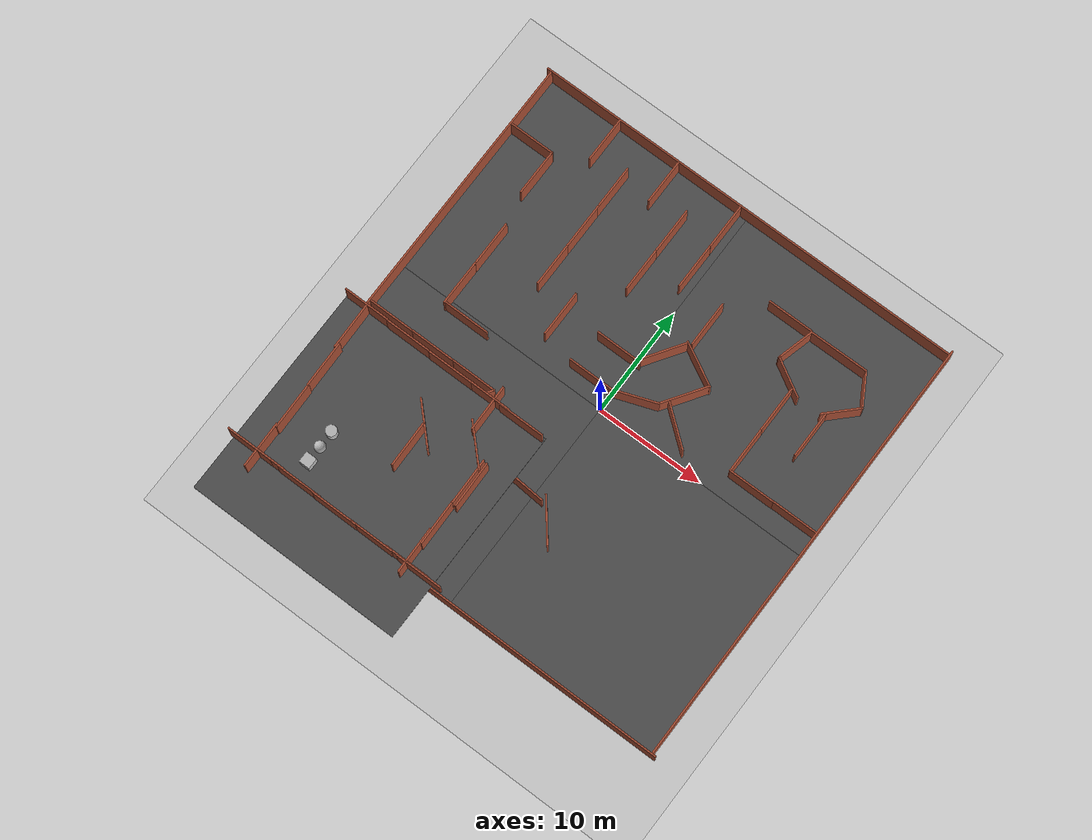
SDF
<sdf version="1.6">
 <world name="default">
  <light name="sun" type="directional">
   <pose>0 0 10 0 -0 0</pose>
   <diffuse>0.8 0.8 0.8 1</diffuse>
   <specular>0.2 0.2 0.2 1</specular>
   <attenuation>
    <range>1000</range>
    <constant>0.9</constant>
    <linear>0.01</linear>
    <quadratic>0.001</quadratic>
   </attenuation>
   <direction>-0.5 0.1 -0.9</direction>
  </light>
  <model name="ground_plane">
   <static>1</static>
   <link name="link">
    <collision name="collision">
     <geometry><plane><normal>0 0 1</normal><size>100 100</size></plane></geometry>
     <surface><friction><ode><mu>100</mu><mu2>50</mu2></ode></friction></surface>
    </collision>
    <visual name="visual">
     <cast_shadows>0</cast_shadows>
     <geometry><plane><normal>0 0 1</normal><size>100 100</size></plane></geometry>
     <material>
      <script><uri>file://media/materials/scripts/gazebo.material</uri><name>Gazebo/Grey</name></script>
     </material>
    </visual>
   </link>
  </model>
  <physics name="default_physics" default="0" type="ode">
   <max_step_size>0.001</max_step_size>
   <real_time_factor>1</real_time_factor>
   <real_time_update_rate>1000</real_time_update_rate>
  </physics>
  <scene><ambient>0.4 0.4 0.4 1</ambient><background>0.7 0.7 0.7 1</background><shadows>1</shadows></scene>
  <spherical_coordinates>
   <surface_model>EARTH_WGS84</surface_model>
   <latitude_deg>0</latitude_deg>
   <longitude_deg>0</longitude_deg>
   <elevation>0</elevation>
   <heading_deg>0</heading_deg>
  </spherical_coordinates>
  <model name="asphalt_plane">
   <static>1</static>
   <link name="link">
    <collision name="collision"><geometry><box><size>20 20 0.1</size></box></geometry></collision>
    <visual name="visual">
     <cast_shadows>0</cast_shadows>
     <geometry><box><size>20 20 0.1</size></box></geometry>
     <material>
      <script>
       <uri>model://asphalt_plane/materials/scripts</uri>
       <uri>model://asphalt_plane/materials/textures</uri>
       <name>vrc/asphalt</name>
      </script>
     </material>
    </visual>
   </link>
   <pose>10 10 0 0 -0 0</pose>
  </model>
  <model name="asphalt_plane_0">
   <static>1</static>
   <link name="link">
    <collision name="collision"><geometry><box><size>20 20 0.1</size></box></geometry></collision>
    <visual name="visual">
     <cast_shadows>0</cast_shadows>
     <geometry><box><size>20 20 0.1</size></box></geometry>
     <material>
      <script>
       <uri>model://asphalt_plane/materials/scripts</uri>
       <uri>model://asphalt_plane/materials/textures</uri>
       <name>vrc/asphalt</name>
      </script>
     </material>
    </visual>
   </link>
   <pose>-10 10 0 0 -0 0</pose>
  </model>
  <model name="asphalt_plane_1">
   <static>1</static>
   <link name="link">
    <collision name="collision"><geometry><box><size>20 20 0.1</size></box></geometry></collision>
    <visual name="visual">
     <cast_shadows>0</cast_shadows>
     <geometry><box><size>20 20 0.1</size></box></geometry>
     <material>
      <script>
       <uri>model://asphalt_plane/materials/scripts</uri>
       <uri>model://asphalt_plane/materials/textures</uri>
       <name>vrc/asphalt</name>
      </script>
     </material>
    </visual>
   </link>
   <pose>-10 -10 0 0 -0 0</pose>
  </model>
  <model name="asphalt_plane_2">
   <static>1</static>
   <link name="link">
    <collision name="collision"><geometry><box><size>20 20 0.1</size></box></geometry></collision>
    <visual name="visual">
     <cast_shadows>0</cast_shadows>
     <geometry><box><size>20 20 0.1</size></box></geometry>
     <material>
      <script>
       <uri>model://asphalt_plane/materials/scripts</uri>
       <uri>model://asphalt_plane/materials/textures</uri>
       <name>vrc/asphalt</name>
      </script>
     </material>
    </visual>
   </link>
   <pose>10 -10 0 0 -0 0</pose>
  </model>
  <model name="longwall">
   <pose>0.229981 -20.0786 0 0 -0 0</pose>
   <link name="Wall_0">
    <collision name="Wall_0_Collision">
     <geometry><box><size>40.5 0.15 2.5</size></box></geometry>
     <pose>0 0 1.25 0 -0 0</pose>
    </collision>
    <visual name="Wall_0_Visual">
     <pose>0 0 1.25 0 -0 0</pose>
     <geometry><box><size>40.5 0.15 2.5</size></box></geometry>
     <material>
      <script><uri>file://media/materials/scripts/gazebo.material</uri><name>Gazebo/Bricks</name></script>
      <ambient>1 1 1 1</ambient>
     </material>
    </visual>
    <pose>1e-06 0 0 0 -0 0</pose>
   </link>
   <static>1</static>
  </model>
  <model name="longwall_0">
   <pose>-20.0177 -0.255752 0 0 0 -1.57092</pose>
   <link name="Wall_0">
    <collision name="Wall_0_Collision">
     <geometry><box><size>40.5 0.15 2.5</size></box></geometry>
     <pose>0 0 1.25 0 -0 0</pose>
    </collision>
    <visual name="Wall_0_Visual">
     <pose>0 0 1.25 0 -0 0</pose>
     <geometry><box><size>40.5 0.15 2.5</size></box></geometry>
     <material>
      <script><uri>file://media/materials/scripts/gazebo.material</uri><name>Gazebo/Bricks</name></script>
      <ambient>1 1 1 1</ambient>
     </material>
    </visual>
    <pose>1e-06 0 0 0 -0 0</pose>
   </link>
   <static>1</static>
  </model>
  <model name="longwall_0_clone">
   <pose>20.1053 0.258056 0 0 0 -1.57092</pose>
   <link name="Wall_0">
    <collision name="Wall_0_Collision">
     <geometry><box><size>40.5 0.15 2.5</size></box></geometry>
     <pose>0 0 1.25 0 -0 0</pose>
    </collision>
    <visual name="Wall_0_Visual">
     <pose>0 0 1.25 0 -0 0</pose>
     <geometry><box><size>40.5 0.15 2.5</size></box></geometry>
     <material>
      <script><uri>file://media/materials/scripts/gazebo.material</uri><name>Gazebo/Bricks</name></script>
      <ambient>1 1 1 1</ambient>
     </material>
    </visual>
    <pose>1e-06 0 0 0 -0 0</pose>
   </link>
   <static>1</static>
  </model>
  <model name="longwall_clone">
   <pose>-0.214439 20.0862 0 0 -0 0</pose>
   <link name="Wall_0">
    <collision name="Wall_0_Collision">
     <geometry><box><size>40.5 0.15 2.5</size></box></geometry>
     <pose>0 0 1.25 0 -0 0</pose>
    </collision>
    <visual name="Wall_0_Visual">
     <pose>0 0 1.25 0 -0 0</pose>
     <geometry><box><size>40.5 0.15 2.5</size></box></geometry>
     <material>
      <script><uri>file://media/materials/scripts/gazebo.material</uri><name>Gazebo/Bricks</name></script>
      <ambient>1 1 1 1</ambient>
     </material>
    </visual>
    <pose>1e-06 0 0 0 -0 0</pose>
   </link>
   <static>1</static>
  </model>
  <model name="room1">
   <pose>13.1523 12.4323 0 0 -0 0</pose>
   <link name="Wall_11">
    <collision name="Wall_11_Collision">
     <geometry><box><size>3.25 0.15 2.5</size></box></geometry>
     <pose>0 0 1.25 0 -0 0</pose>
    </collision>
    <visual name="Wall_11_Visual">
     <pose>0 0 1.25 0 -0 0</pose>
     <geometry><box><size>3.25 0.15 2.5</size></box></geometry>
     <material>
      <script><uri>file://media/materials/scripts/gazebo.material</uri><name>Gazebo/Bricks</name></script>
      <ambient>1 1 1 1</ambient>
     </material>
    </visual>
    <pose>3.12132 1.19483 0 0 0 -1.0472</pose>
   </link>
   <link name="Wall_12">
    <collision name="Wall_12_Collision">
     <geometry><box><size>3.5 0.15 2.5</size></box></geometry>
     <pose>0 0 1.25 0 -0 0</pose>
    </collision>
    <visual name="Wall_12_Visual">
     <pose>0 0 1.25 0 -0 0</pose>
     <geometry><box><size>3.5 0.15 2.5</size></box></geometry>
     <material>
      <script><uri>file://media/materials/scripts/gazebo.material</uri><name>Gazebo/Bricks</name></script>
      <ambient>1 1 1 1</ambient>
     </material>
    </visual>
    <pose>2.71192 -1.33192 0 0 0 -2.35619</pose>
   </link>
   <link name="Wall_7">
    <collision name="Wall_7_Collision">
     <geometry><box><size>5.52935 0.15 2.5</size></box></geometry>
     <pose>0 0 1.25 0 -0 0</pose>
    </collision>
    <visual name="Wall_7_Visual">
     <pose>0 0 1.25 0 -0 0</pose>
     <geometry><box><size>5.52935 0.15 2.5</size></box></geometry>
     <material>
      <script><uri>file://media/materials/scripts/gazebo.material</uri><name>Gazebo/Bricks</name></script>
      <ambient>1 1 1 1</ambient>
     </material>
    </visual>
    <pose>-0.343285 2.51793 0 0 0 -3.13444</pose>
   </link>
   <link name="Wall_8">
    <collision name="Wall_8_Collision">
     <geometry><box><size>3.5 0.15 2.5</size></box></geometry>
     <pose>0 0 1.25 0 -0 0</pose>
    </collision>
    <visual name="Wall_8_Visual">
     <pose>0 0 1.25 0 -0 0</pose>
     <geometry><box><size>3.5 0.15 2.5</size></box></geometry>
     <material>
      <script><uri>file://media/materials/scripts/gazebo.material</uri><name>Gazebo/Bricks</name></script>
      <ambient>1 1 1 1</ambient>
     </material>
    </visual>
    <pose>-3.46641 0.880761 0 0 0 -1.8326</pose>
   </link>
   <link name="Wall_9">
    <collision name="Wall_9_Collision">
     <geometry><box><size>3.75 0.15 2.5</size></box></geometry>
     <pose>0 0 1.25 0 -0 0</pose>
    </collision>
    <visual name="Wall_9_Visual">
     <pose>0 0 1.25 0 -0 0</pose>
     <geometry><box><size>3.75 0.15 2.5</size></box></geometry>
     <material>
      <script><uri>file://media/materials/scripts/gazebo.material</uri><name>Gazebo/Bricks</name></script>
      <ambient>1 1 1 1</ambient>
     </material>
    </visual>
    <pose>-2.34109 -1.63716 0 0 0 -0.523599</pose>
   </link>
   <static>1</static>
  </model>
  <model name="worlds_1">
   <pose>3 10.4406 0 0 -0 0</pose>
   <link name="Wall_0">
    <collision name="Wall_0_Collision">
     <geometry><box><size>4.25 0.15 2.5</size></box></geometry>
     <pose>0 0 1.25 0 -0 0</pose>
    </collision>
    <visual name="Wall_0_Visual">
     <pose>0 0 1.25 0 -0 0</pose>
     <geometry><box><size>4.25 0.15 2.5</size></box></geometry>
     <material>
      <script><uri>file://media/materials/scripts/gazebo.material</uri><name>Gazebo/Bricks</name></script>
      <ambient>1 1 1 1</ambient>
     </material>
    </visual>
    <pose>0 -0 0 0 -0 1.5708</pose>
   </link>
   <static>1</static>
  </model>
  <model name="worlds_2">
   <pose>4.42901 7.33195 0 0 -0 1.08023</pose>
   <link name="Wall_0">
    <collision name="Wall_0_Collision">
     <geometry><box><size>4.25 0.15 2.5</size></box></geometry>
     <pose>0 0 1.25 0 -0 0</pose>
    </collision>
    <visual name="Wall_0_Visual">
     <pose>0 0 1.25 0 -0 0</pose>
     <geometry><box><size>4.25 0.15 2.5</size></box></geometry>
     <material>
      <script><uri>file://media/materials/scripts/gazebo.material</uri><name>Gazebo/Bricks</name></script>
      <ambient>1 1 1 1</ambient>
     </material>
    </visual>
    <pose>0 -0 0 0 -0 1.5708</pose>
   </link>
   <static>1</static>
  </model>
  <model name="worlds_0_clone">
   <pose>-1 -9 0 0 -0 1.49697</pose>
   <link name="Wall_0">
    <collision name="Wall_0_Collision">
     <geometry><box><size>4.25 0.15 2.5</size></box></geometry>
     <pose>0 0 1.25 0 -0 0</pose>
    </collision>
    <visual name="Wall_0_Visual">
     <pose>0 0 1.25 0 -0 0</pose>
     <geometry><box><size>4.25 0.15 2.5</size></box></geometry>
     <material>
      <script><uri>file://media/materials/scripts/gazebo.material</uri><name>Gazebo/Bricks</name></script>
      <ambient>1 1 1 1</ambient>
     </material>
    </visual>
    <pose>0 -0 0 0 -0 1.5708</pose>
   </link>
   <static>1</static>
  </model>
  <model name="worlds_2_clone">
   <pose>2.34689 -10.1873 0 0 -0 0.67691</pose>
   <link name="Wall_0">
    <collision name="Wall_0_Collision">
     <geometry><box><size>4.25 0.15 2.5</size></box></geometry>
     <pose>0 0 1.25 0 -0 0</pose>
    </collision>
    <visual name="Wall_0_Visual">
     <pose>0 0 1.25 0 -0 0</pose>
     <geometry><box><size>4.25 0.15 2.5</size></box></geometry>
     <material>
      <script><uri>file://media/materials/scripts/gazebo.material</uri><name>Gazebo/Bricks</name></script>
      <ambient>1 1 1 1</ambient>
     </material>
    </visual>
    <pose>0 -0 0 0 -0 1.5708</pose>
   </link>
   <static>1</static>
  </model>
  <model name="worlds_1_clone">
   <pose>11.6021 8.07399 0 0 -0 0</pose>
   <link name="Wall_0">
    <collision name="Wall_0_Collision">
     <geometry><box><size>4.25 0.15 2.5</size></box></geometry>
     <pose>0 0 1.25 0 -0 0</pose>
    </collision>
    <visual name="Wall_0_Visual">
     <pose>0 0 1.25 0 -0 0</pose>
     <geometry><box><size>4.25 0.15 2.5</size></box></geometry>
     <material>
      <script><uri>file://media/materials/scripts/gazebo.material</uri><name>Gazebo/Bricks</name></script>
      <ambient>1 1 1 1</ambient>
     </material>
    </visual>
    <pose>0 -0 0 0 -0 1.5708</pose>
   </link>
   <static>1</static>
  </model>
  <model name="worlds_1_clone_0">
   <pose>11.6134 3.89135 0 0 -0 0</pose>
   <link name="Wall_0">
    <collision name="Wall_0_Collision">
     <geometry><box><size>4.25 0.15 2.5</size></box></geometry>
     <pose>0 0 1.25 0 -0 0</pose>
    </collision>
    <visual name="Wall_0_Visual">
     <pose>0 0 1.25 0 -0 0</pose>
     <geometry><box><size>4.25 0.15 2.5</size></box></geometry>
     <material>
      <script><uri>file://media/materials/scripts/gazebo.material</uri><name>Gazebo/Bricks</name></script>
      <ambient>1 1 1 1</ambient>
     </material>
    </visual>
    <pose>0 -0 0 0 -0 1.5708</pose>
   </link>
   <static>1</static>
  </model>
  <model name="worlds_1_clone_0_clone">
   <pose>13.736 1.79456 0 0 0 -1.57092</pose>
   <link name="Wall_0">
    <collision name="Wall_0_Collision">
     <geometry><box><size>4.25 0.15 2.5</size></box></geometry>
     <pose>0 0 1.25 0 -0 0</pose>
    </collision>
    <visual name="Wall_0_Visual">
     <pose>0 0 1.25 0 -0 0</pose>
     <geometry><box><size>4.25 0.15 2.5</size></box></geometry>
     <material>
      <script><uri>file://media/materials/scripts/gazebo.material</uri><name>Gazebo/Bricks</name></script>
      <ambient>1 1 1 1</ambient>
     </material>
    </visual>
    <pose>0 -0 0 0 -0 1.5708</pose>
   </link>
   <static>1</static>
  </model>
  <model name="worlds_1_clone_0_clone_clone">
   <pose>17.9203 1.82357 0 0 0 -1.57092</pose>
   <link name="Wall_0">
    <collision name="Wall_0_Collision">
     <geometry><box><size>4.25 0.15 2.5</size></box></geometry>
     <pose>0 0 1.25 0 -0 0</pose>
    </collision>
    <visual name="Wall_0_Visual">
     <pose>0 0 1.25 0 -0 0</pose>
     <geometry><box><size>4.25 0.15 2.5</size></box></geometry>
     <material>
      <script><uri>file://media/materials/scripts/gazebo.material</uri><name>Gazebo/Bricks</name></script>
      <ambient>1 1 1 1</ambient>
     </material>
    </visual>
    <pose>0 -0 0 0 -0 1.5708</pose>
   </link>
   <static>1</static>
  </model>
  <model name="worlds_1_clone_0_clone_clone_0">
   <pose>8 15 0 0 0 -1.57092</pose>
   <link name="Wall_0">
    <collision name="Wall_0_Collision">
     <geometry><box><size>4.25 0.15 2.5</size></box></geometry>
     <pose>0 0 1.25 0 -0 0</pose>
    </collision>
    <visual name="Wall_0_Visual">
     <pose>0 0 1.25 0 -0 0</pose>
     <geometry><box><size>4.25 0.15 2.5</size></box></geometry>
     <material>
      <script><uri>file://media/materials/scripts/gazebo.material</uri><name>Gazebo/Bricks</name></script>
      <ambient>1 1 1 1</ambient>
     </material>
    </visual>
    <pose>0 -0 0 0 -0 1.5708</pose>
   </link>
   <static>1</static>
  </model>
  <model name="worlds_1_clone_0_clone_clone_0_clone">
   <pose>-17.8162 14.4688 0 0 0 -1.57092</pose>
   <link name="Wall_0">
    <collision name="Wall_0_Collision">
     <geometry><box><size>4.25 0.15 2.5</size></box></geometry>
     <pose>0 0 1.25 0 -0 0</pose>
    </collision>
    <visual name="Wall_0_Visual">
     <pose>0 0 1.25 0 -0 0</pose>
     <geometry><box><size>4.25 0.15 2.5</size></box></geometry>
     <material>
      <script><uri>file://media/materials/scripts/gazebo.material</uri><name>Gazebo/Bricks</name></script>
      <ambient>1 1 1 1</ambient>
     </material>
    </visual>
    <pose>0 -0 0 0 -0 1.5708</pose>
   </link>
   <static>1</static>
  </model>
  <model name="worlds_1_clone_1">
   <pose>-13 18 0 0 -0 0</pose>
   <link name="Wall_0">
    <collision name="Wall_0_Collision">
     <geometry><box><size>4.25 0.15 2.5</size></box></geometry>
     <pose>0 0 1.25 0 -0 0</pose>
    </collision>
    <visual name="Wall_0_Visual">
     <pose>0 0 1.25 0 -0 0</pose>
     <geometry><box><size>4.25 0.15 2.5</size></box></geometry>
     <material>
      <script><uri>file://media/materials/scripts/gazebo.material</uri><name>Gazebo/Bricks</name></script>
      <ambient>1 1 1 1</ambient>
     </material>
    </visual>
    <pose>0 -0 0 0 -0 1.5708</pose>
   </link>
   <static>1</static>
  </model>
  <model name="worlds_1_clone_1_clone">
   <pose>-15.7734 12.3225 0 0 -0 0</pose>
   <link name="Wall_0">
    <collision name="Wall_0_Collision">
     <geometry><box><size>4.25 0.15 2.5</size></box></geometry>
     <pose>0 0 1.25 0 -0 0</pose>
    </collision>
    <visual name="Wall_0_Visual">
     <pose>0 0 1.25 0 -0 0</pose>
     <geometry><box><size>4.25 0.15 2.5</size></box></geometry>
     <material>
      <script><uri>file://media/materials/scripts/gazebo.material</uri><name>Gazebo/Bricks</name></script>
      <ambient>1 1 1 1</ambient>
     </material>
    </visual>
    <pose>0 -0 0 0 -0 1.5708</pose>
   </link>
   <static>1</static>
  </model>
  <model name="worlds_1_clone_1_clone_clone">
   <pose>-15.0638 5.287 0 0 -0 0</pose>
   <link name="Wall_0">
    <collision name="Wall_0_Collision">
     <geometry><box><size>4.25 0.15 2.5</size></box></geometry>
     <pose>0 0 1.25 0 -0 0</pose>
    </collision>
    <visual name="Wall_0_Visual">
     <pose>0 0 1.25 0 -0 0</pose>
     <geometry><box><size>4.25 0.15 2.5</size></box></geometry>
     <material>
      <script><uri>file://media/materials/scripts/gazebo.material</uri><name>Gazebo/Bricks</name></script>
      <ambient>1 1 1 1</ambient>
     </material>
    </visual>
    <pose>0 -0 0 0 -0 1.5708</pose>
   </link>
   <static>1</static>
  </model>
  <model name="worlds_1_clone_1_clone_clone_0">
   <pose>-15.0769 1.18275 0 0 -0 0</pose>
   <link name="Wall_0">
    <collision name="Wall_0_Collision">
     <geometry><box><size>4.25 0.15 2.5</size></box></geometry>
     <pose>0 0 1.25 0 -0 0</pose>
    </collision>
    <visual name="Wall_0_Visual">
     <pose>0 0 1.25 0 -0 0</pose>
     <geometry><box><size>4.25 0.15 2.5</size></box></geometry>
     <material>
      <script><uri>file://media/materials/scripts/gazebo.material</uri><name>Gazebo/Bricks</name></script>
      <ambient>1 1 1 1</ambient>
     </material>
    </visual>
    <pose>0 -0 0 0 -0 1.5708</pose>
   </link>
   <static>1</static>
  </model>
  <model name="worlds_1_clone_0_clone_clone_0_clone_clone">
   <pose>-17.8054 -4.32089 0 0 0 -1.57092</pose>
   <link name="Wall_0">
    <collision name="Wall_0_Collision">
     <geometry><box><size>4.25 0.15 2.5</size></box></geometry>
     <pose>0 0 1.25 0 -0 0</pose>
    </collision>
    <visual name="Wall_0_Visual">
     <pose>0 0 1.25 0 -0 0</pose>
     <geometry><box><size>4.25 0.15 2.5</size></box></geometry>
     <material>
      <script><uri>file://media/materials/scripts/gazebo.material</uri><name>Gazebo/Bricks</name></script>
      <ambient>1 1 1 1</ambient>
     </material>
    </visual>
    <pose>0 -0 0 0 -0 1.5708</pose>
   </link>
   <static>1</static>
  </model>
  <model name="worlds_1_clone_0_clone_clone_0_clone_clone_0">
   <pose>-13.6699 -4.29855 0 0 0 -1.57092</pose>
   <link name="Wall_0">
    <collision name="Wall_0_Collision">
     <geometry><box><size>4.25 0.15 2.5</size></box></geometry>
     <pose>0 0 1.25 0 -0 0</pose>
    </collision>
    <visual name="Wall_0_Visual">
     <pose>0 0 1.25 0 -0 0</pose>
     <geometry><box><size>4.25 0.15 2.5</size></box></geometry>
     <material>
      <script><uri>file://media/materials/scripts/gazebo.material</uri><name>Gazebo/Bricks</name></script>
      <ambient>1 1 1 1</ambient>
     </material>
    </visual>
    <pose>0 -0 0 0 -0 1.5708</pose>
   </link>
   <static>1</static>
  </model>
  <model name="worlds_1_clone_0_clone_clone_0_clone_clone_1">
   <pose>-9.47339 -4.28892 0 0 0 -1.57092</pose>
   <link name="Wall_0">
    <collision name="Wall_0_Collision">
     <geometry><box><size>4.25 0.15 2.5</size></box></geometry>
     <pose>0 0 1.25 0 -0 0</pose>
    </collision>
    <visual name="Wall_0_Visual">
     <pose>0 0 1.25 0 -0 0</pose>
     <geometry><box><size>4.25 0.15 2.5</size></box></geometry>
     <material>
      <script><uri>file://media/materials/scripts/gazebo.material</uri><name>Gazebo/Bricks</name></script>
      <ambient>1 1 1 1</ambient>
     </material>
    </visual>
    <pose>0 -0 0 0 -0 1.5708</pose>
   </link>
   <static>1</static>
  </model>
  <model name="worlds_1_clone_1_clone_0">
   <pose>-0.708445 17.9147 0 0 -0 0</pose>
   <link name="Wall_0">
    <collision name="Wall_0_Collision">
     <geometry><box><size>4.25 0.15 2.5</size></box></geometry>
     <pose>0 0 1.25 0 -0 0</pose>
    </collision>
    <visual name="Wall_0_Visual">
     <pose>0 0 1.25 0 -0 0</pose>
     <geometry><box><size>4.25 0.15 2.5</size></box></geometry>
     <material>
      <script><uri>file://media/materials/scripts/gazebo.material</uri><name>Gazebo/Bricks</name></script>
      <ambient>1 1 1 1</ambient>
     </material>
    </visual>
    <pose>0 -0 0 0 -0 1.5708</pose>
   </link>
   <static>1</static>
  </model>
  <model name="worlds_1_clone_1_clone_1">
   <pose>-0.716318 13.714 0 0 -0 0</pose>
   <link name="Wall_0">
    <collision name="Wall_0_Collision">
     <geometry><box><size>4.25 0.15 2.5</size></box></geometry>
     <pose>0 0 1.25 0 -0 0</pose>
    </collision>
    <visual name="Wall_0_Visual">
     <pose>0 0 1.25 0 -0 0</pose>
     <geometry><box><size>4.25 0.15 2.5</size></box></geometry>
     <material>
      <script><uri>file://media/materials/scripts/gazebo.material</uri><name>Gazebo/Bricks</name></script>
      <ambient>1 1 1 1</ambient>
     </material>
    </visual>
    <pose>0 -0 0 0 -0 1.5708</pose>
   </link>
   <static>1</static>
  </model>
  <model name="worlds_1_clone_1_clone_2">
   <pose>-7 18 0 0 -0 0</pose>
   <link name="Wall_0">
    <collision name="Wall_0_Collision">
     <geometry><box><size>4.25 0.15 2.5</size></box></geometry>
     <pose>0 0 1.25 0 -0 0</pose>
    </collision>
    <visual name="Wall_0_Visual">
     <pose>0 0 1.25 0 -0 0</pose>
     <geometry><box><size>4.25 0.15 2.5</size></box></geometry>
     <material>
      <script><uri>file://media/materials/scripts/gazebo.material</uri><name>Gazebo/Bricks</name></script>
      <ambient>1 1 1 1</ambient>
     </material>
    </visual>
    <pose>0 -0 0 0 -0 1.5708</pose>
   </link>
   <static>1</static>
  </model>
  <model name="worlds_1_clone_1_clone_3">
   <pose>-10 15 0 0 -0 0</pose>
   <link name="Wall_0">
    <collision name="Wall_0_Collision">
     <geometry><box><size>4.25 0.15 2.5</size></box></geometry>
     <pose>0 0 1.25 0 -0 0</pose>
    </collision>
    <visual name="Wall_0_Visual">
     <pose>0 0 1.25 0 -0 0</pose>
     <geometry><box><size>4.25 0.15 2.5</size></box></geometry>
     <material>
      <script><uri>file://media/materials/scripts/gazebo.material</uri><name>Gazebo/Bricks</name></script>
      <ambient>1 1 1 1</ambient>
     </material>
    </visual>
    <pose>0 -0 0 0 -0 1.5708</pose>
   </link>
   <static>1</static>
  </model>
  <model name="worlds_1_clone_1_clone_4">
   <pose>-10 11 0 0 -0 0</pose>
   <link name="Wall_0">
    <collision name="Wall_0_Collision">
     <geometry><box><size>4.25 0.15 2.5</size></box></geometry>
     <pose>0 0 1.25 0 -0 0</pose>
    </collision>
    <visual name="Wall_0_Visual">
     <pose>0 0 1.25 0 -0 0</pose>
     <geometry><box><size>4.25 0.15 2.5</size></box></geometry>
     <material>
      <script><uri>file://media/materials/scripts/gazebo.material</uri><name>Gazebo/Bricks</name></script>
      <ambient>1 1 1 1</ambient>
     </material>
    </visual>
    <pose>0 -0 0 0 -0 1.5708</pose>
   </link>
   <static>1</static>
  </model>
  <model name="worlds_1_clone_1_clone_5">
   <pose>-4 15 0 0 -0 0</pose>
   <link name="Wall_0">
    <collision name="Wall_0_Collision">
     <geometry><box><size>4.25 0.15 2.5</size></box></geometry>
     <pose>0 0 1.25 0 -0 0</pose>
    </collision>
    <visual name="Wall_0_Visual">
     <pose>0 0 1.25 0 -0 0</pose>
     <geometry><box><size>4.25 0.15 2.5</size></box></geometry>
     <material>
      <script><uri>file://media/materials/scripts/gazebo.material</uri><name>Gazebo/Bricks</name></script>
      <ambient>1 1 1 1</ambient>
     </material>
    </visual>
    <pose>0 -0 0 0 -0 1.5708</pose>
   </link>
   <static>1</static>
  </model>
  <model name="worlds_1_clone_1_clone_6">
   <pose>-4 11 0 0 -0 0</pose>
   <link name="Wall_0">
    <collision name="Wall_0_Collision">
     <geometry><box><size>4.25 0.15 2.5</size></box></geometry>
     <pose>0 0 1.25 0 -0 0</pose>
    </collision>
    <visual name="Wall_0_Visual">
     <pose>0 0 1.25 0 -0 0</pose>
     <geometry><box><size>4.25 0.15 2.5</size></box></geometry>
     <material>
      <script><uri>file://media/materials/scripts/gazebo.material</uri><name>Gazebo/Bricks</name></script>
      <ambient>1 1 1 1</ambient>
     </material>
    </visual>
    <pose>0 -0 0 0 -0 1.5708</pose>
   </link>
   <static>1</static>
  </model>
  <model name="worlds_1_clone_1_clone_7">
   <pose>-10 7 0 0 -0 0</pose>
   <link name="Wall_0">
    <collision name="Wall_0_Collision">
     <geometry><box><size>4.25 0.15 2.5</size></box></geometry>
     <pose>0 0 1.25 0 -0 0</pose>
    </collision>
    <visual name="Wall_0_Visual">
     <pose>0 0 1.25 0 -0 0</pose>
     <geometry><box><size>4.25 0.15 2.5</size></box></geometry>
     <material>
      <script><uri>file://media/materials/scripts/gazebo.material</uri><name>Gazebo/Bricks</name></script>
      <ambient>1 1 1 1</ambient>
     </material>
    </visual>
    <pose>0 -0 0 0 -0 1.5708</pose>
   </link>
   <static>1</static>
  </model>
  <model name="worlds_1_clone_0_clone_clone_0_clone_clone_0_clone">
   <pose>-12.8938 -0.809745 0 0 0 -1.57092</pose>
   <link name="Wall_0">
    <collision name="Wall_0_Collision">
     <geometry><box><size>4.25 0.15 2.5</size></box></geometry>
     <pose>0 0 1.25 0 -0 0</pose>
    </collision>
    <visual name="Wall_0_Visual">
     <pose>0 0 1.25 0 -0 0</pose>
     <geometry><box><size>4.25 0.15 2.5</size></box></geometry>
     <material>
      <script><uri>file://media/materials/scripts/gazebo.material</uri><name>Gazebo/Bricks</name></script>
      <ambient>1 1 1 1</ambient>
     </material>
    </visual>
    <pose>0 -0 0 0 -0 1.5708</pose>
   </link>
   <static>1</static>
  </model>
  <model name="worlds_1_clone_1_clone_7_clone">
   <pose>-7 4 0 0 -0 0</pose>
   <link name="Wall_0">
    <collision name="Wall_0_Collision">
     <geometry><box><size>4.25 0.15 2.5</size></box></geometry>
     <pose>0 0 1.25 0 -0 0</pose>
    </collision>
    <visual name="Wall_0_Visual">
     <pose>0 0 1.25 0 -0 0</pose>
     <geometry><box><size>4.25 0.15 2.5</size></box></geometry>
     <material>
      <script><uri>file://media/materials/scripts/gazebo.material</uri><name>Gazebo/Bricks</name></script>
      <ambient>1 1 1 1</ambient>
     </material>
    </visual>
    <pose>0 -0 0 0 -0 1.5708</pose>
   </link>
   <static>1</static>
  </model>
  <model name="worlds_1_clone_1_clone_7_clone_clone">
   <pose>1.48825 6.4581 0 0 0 -0.589381</pose>
   <link name="Wall_0">
    <collision name="Wall_0_Collision">
     <geometry><box><size>4.25 0.15 2.5</size></box></geometry>
     <pose>0 0 1.25 0 -0 0</pose>
    </collision>
    <visual name="Wall_0_Visual">
     <pose>0 0 1.25 0 -0 0</pose>
     <geometry><box><size>4.25 0.15 2.5</size></box></geometry>
     <material>
      <script><uri>file://media/materials/scripts/gazebo.material</uri><name>Gazebo/Bricks</name></script>
      <ambient>1 1 1 1</ambient>
     </material>
    </visual>
    <pose>0 -0 0 0 -0 1.5708</pose>
   </link>
   <static>1</static>
  </model>
  <model name="worlds_1_clone_1_clone_7_clone_clone_clone">
   <pose>5 4.58681 0 0 0 -0.589381</pose>
   <link name="Wall_0">
    <collision name="Wall_0_Collision">
     <geometry><box><size>4.25 0.15 2.5</size></box></geometry>
     <pose>0 0 1.25 0 -0 0</pose>
    </collision>
    <visual name="Wall_0_Visual">
     <pose>0 0 1.25 0 -0 0</pose>
     <geometry><box><size>4.25 0.15 2.5</size></box></geometry>
     <material>
      <script><uri>file://media/materials/scripts/gazebo.material</uri><name>Gazebo/Bricks</name></script>
      <ambient>1 1 1 1</ambient>
     </material>
    </visual>
    <pose>0 -0 0 0 -0 1.5708</pose>
   </link>
   <static>1</static>
  </model>
  <model name="worlds_1_clone_0_clone_clone_0_clone_clone_0_clone_clone">
   <pose>-1.54431 4.60476 0 0 0 -1.57092</pose>
   <link name="Wall_0">
    <collision name="Wall_0_Collision">
     <geometry><box><size>4.25 0.15 2.5</size></box></geometry>
     <pose>0 0 1.25 0 -0 0</pose>
    </collision>
    <visual name="Wall_0_Visual">
     <pose>0 0 1.25 0 -0 0</pose>
     <geometry><box><size>4.25 0.15 2.5</size></box></geometry>
     <material>
      <script><uri>file://media/materials/scripts/gazebo.material</uri><name>Gazebo/Bricks</name></script>
      <ambient>1 1 1 1</ambient>
     </material>
    </visual>
    <pose>0 -0 0 0 -0 1.5708</pose>
   </link>
   <static>1</static>
  </model>
  <model name="worlds_1_clone_0_clone_clone_0_clone_clone_0_clone_clone_0">
   <pose>1.87166 2.0906 0 0 0 -1.22347</pose>
   <link name="Wall_0">
    <collision name="Wall_0_Collision">
     <geometry><box><size>4.25 0.15 2.5</size></box></geometry>
     <pose>0 0 1.25 0 -0 0</pose>
    </collision>
    <visual name="Wall_0_Visual">
     <pose>0 0 1.25 0 -0 0</pose>
     <geometry><box><size>4.25 0.15 2.5</size></box></geometry>
     <material>
      <script><uri>file://media/materials/scripts/gazebo.material</uri><name>Gazebo/Bricks</name></script>
      <ambient>1 1 1 1</ambient>
     </material>
    </visual>
    <pose>0 -0 0 0 -0 1.5708</pose>
   </link>
   <static>1</static>
  </model>
  <model name="worlds_1_clone_0_clone_clone_0_clone_clone_0_clone_clone_clone">
   <pose>-2 1.45154 0 0 0 -1.57092</pose>
   <link name="Wall_0">
    <collision name="Wall_0_Collision">
     <geometry><box><size>4.25 0.15 2.5</size></box></geometry>
     <pose>0 0 1.25 0 -0 0</pose>
    </collision>
    <visual name="Wall_0_Visual">
     <pose>0 0 1.25 0 -0 0</pose>
     <geometry><box><size>4.25 0.15 2.5</size></box></geometry>
     <material>
      <script><uri>file://media/materials/scripts/gazebo.material</uri><name>Gazebo/Bricks</name></script>
      <ambient>1 1 1 1</ambient>
     </material>
    </visual>
    <pose>0 -0 0 0 -0 1.5708</pose>
   </link>
   <static>1</static>
  </model>
  <model name="worlds_1_clone_1_clone_7_clone_clone_0">
   <pose>6.00131 2.13117 0 0 -0 0.90029</pose>
   <link name="Wall_0">
    <collision name="Wall_0_Collision">
     <geometry><box><size>4.25 0.15 2.5</size></box></geometry>
     <pose>0 0 1.25 0 -0 0</pose>
    </collision>
    <visual name="Wall_0_Visual">
     <pose>0 0 1.25 0 -0 0</pose>
     <geometry><box><size>4.25 0.15 2.5</size></box></geometry>
     <material>
      <script><uri>file://media/materials/scripts/gazebo.material</uri><name>Gazebo/Bricks</name></script>
      <ambient>1 1 1 1</ambient>
     </material>
    </visual>
    <pose>0 -0 0 0 -0 1.5708</pose>
   </link>
   <static>1</static>
  </model>
  <model name="worlds_1_clone_1_clone_7_clone_clone_clone_0">
   <pose>-8.55218 -6 0 0 0 -0.589381</pose>
   <link name="Wall_0">
    <collision name="Wall_0_Collision">
     <geometry><box><size>4.25 0.15 2.5</size></box></geometry>
     <pose>0 0 1.25 0 -0 0</pose>
    </collision>
    <visual name="Wall_0_Visual">
     <pose>0 0 1.25 0 -0 0</pose>
     <geometry><box><size>4.25 0.15 2.5</size></box></geometry>
     <material>
      <script><uri>file://media/materials/scripts/gazebo.material</uri><name>Gazebo/Bricks</name></script>
      <ambient>1 1 1 1</ambient>
     </material>
    </visual>
    <pose>0 -0 0 0 -0 1.5708</pose>
   </link>
   <static>1</static>
  </model>
  <model name="worlds_1_clone_clone">
   <pose>15 8 0 0 -0 0</pose>
   <link name="Wall_0">
    <collision name="Wall_0_Collision">
     <geometry><box><size>4.25 0.15 2.5</size></box></geometry>
     <pose>0 0 1.25 0 -0 0</pose>
    </collision>
    <visual name="Wall_0_Visual">
     <pose>0 0 1.25 0 -0 0</pose>
     <geometry><box><size>4.25 0.15 2.5</size></box></geometry>
     <material>
      <script><uri>file://media/materials/scripts/gazebo.material</uri><name>Gazebo/Bricks</name></script>
      <ambient>1 1 1 1</ambient>
     </material>
    </visual>
    <pose>0 -0 0 0 -0 1.5708</pose>
   </link>
   <static>1</static>
  </model>
  <gravity>0 0 -9.8</gravity>
  <magnetic_field>6e-06 2.3e-05 -4.2e-05</magnetic_field>
  <atmosphere type="adiabatic"/>
  <model name="asphalt_plane_3">
   <static>1</static>
   <link name="link">
    <collision name="collision"><geometry><box><size>20 20 0.1</size></box></geometry></collision>
    <visual name="visual">
     <cast_shadows>0</cast_shadows>
     <geometry><box><size>20 20 0.1</size></box></geometry>
     <material>
      <script>
       <uri>model://asphalt_plane/materials/scripts</uri>
       <uri>model://asphalt_plane/materials/textures</uri>
       <name>vrc/asphalt</name>
      </script>
     </material>
    </visual>
   </link>
   <pose>-11.6399 -15.0125 2.54727 0 -0 0</pose>
  </model>
  <model name="worlds_1_clone_0_clone_clone_0_clone_clone_1_clone">
   <pose>-19.3822 -5.24873 2.59776 0 0 -1.57092</pose>
   <link name="Wall_0">
    <collision name="Wall_0_Collision">
     <geometry><box><size>4.25 0.15 2.5</size></box></geometry>
     <pose>0 0 1.25 0 -0 0</pose>
    </collision>
    <visual name="Wall_0_Visual">
     <pose>0 0 1.25 0 -0 0</pose>
     <geometry><box><size>4.25 0.15 2.5</size></box></geometry>
     <material>
      <script><uri>file://media/materials/scripts/gazebo.material</uri><name>Gazebo/Bricks</name></script>
      <ambient>1 1 1 1</ambient>
     </material>
    </visual>
    <pose>0 -0 0 0 -0 1.5708</pose>
   </link>
   <static>1</static>
  </model>
  <model name="worlds_1_clone_0_clone_clone_0_clone_clone_1_clone_clone">
   <pose>-15.1976 -5.29932 2.59776 0 0 -1.57092</pose>
   <link name="Wall_0">
    <collision name="Wall_0_Collision">
     <geometry><box><size>4.25 0.15 2.5</size></box></geometry>
     <pose>0 0 1.25 0 -0 0</pose>
    </collision>
    <visual name="Wall_0_Visual">
     <pose>0 0 1.25 0 -0 0</pose>
     <geometry><box><size>4.25 0.15 2.5</size></box></geometry>
     <material>
      <script><uri>file://media/materials/scripts/gazebo.material</uri><name>Gazebo/Bricks</name></script>
      <ambient>1 1 1 1</ambient>
     </material>
    </visual>
    <pose>0 -0 0 0 -0 1.5708</pose>
   </link>
   <static>1</static>
  </model>
  <model name="worlds_1_clone_0_clone_clone_0_clone_clone_1_clone_clone_0">
   <pose>-10.932 -5.32362 2.59776 0 0 -1.57092</pose>
   <link name="Wall_0">
    <collision name="Wall_0_Collision">
     <geometry><box><size>4.25 0.15 2.5</size></box></geometry>
     <pose>0 0 1.25 0 -0 0</pose>
    </collision>
    <visual name="Wall_0_Visual">
     <pose>0 0 1.25 0 -0 0</pose>
     <geometry><box><size>4.25 0.15 2.5</size></box></geometry>
     <material>
      <script><uri>file://media/materials/scripts/gazebo.material</uri><name>Gazebo/Bricks</name></script>
      <ambient>1 1 1 1</ambient>
     </material>
    </visual>
    <pose>0 -0 0 0 -0 1.5708</pose>
   </link>
   <static>1</static>
  </model>
  <model name="worlds_1_clone_0_clone_clone_0_clone_clone_1_clone_clone_1">
   <pose>-7.17173 -5.31482 2.59776 0 0 -1.57092</pose>
   <link name="Wall_0">
    <collision name="Wall_0_Collision">
     <geometry><box><size>4.25 0.15 2.5</size></box></geometry>
     <pose>0 0 1.25 0 -0 0</pose>
    </collision>
    <visual name="Wall_0_Visual">
     <pose>0 0 1.25 0 -0 0</pose>
     <geometry><box><size>4.25 0.15 2.5</size></box></geometry>
     <material>
      <script><uri>file://media/materials/scripts/gazebo.material</uri><name>Gazebo/Bricks</name></script>
      <ambient>1 1 1 1</ambient>
     </material>
    </visual>
    <pose>0 -0 0 0 -0 1.5708</pose>
   </link>
   <static>1</static>
  </model>
  <model name="worlds_1_clone_0_clone_clone_0_clone_clone_1_clone_clone_2">
   <pose>-3.83503 -5.37957 2.59776 0 0 -1.57092</pose>
   <link name="Wall_0">
    <collision name="Wall_0_Collision">
     <geometry><box><size>4.25 0.15 2.5</size></box></geometry>
     <pose>0 0 1.25 0 -0 0</pose>
    </collision>
    <visual name="Wall_0_Visual">
     <pose>0 0 1.25 0 -0 0</pose>
     <geometry><box><size>4.25 0.15 2.5</size></box></geometry>
     <material>
      <script><uri>file://media/materials/scripts/gazebo.material</uri><name>Gazebo/Bricks</name></script>
      <ambient>1 1 1 1</ambient>
     </material>
    </visual>
    <pose>0 -0 0 0 -0 1.5708</pose>
   </link>
   <static>1</static>
  </model>
  <model name="worlds_1_clone_0_clone_clone_0_clone_clone_1_clone_clone_3">
   <pose>-18.4162 -19.8176 2.59776 0 0 -1.57092</pose>
   <link name="Wall_0">
    <collision name="Wall_0_Collision">
     <geometry><box><size>4.25 0.15 2.5</size></box></geometry>
     <pose>0 0 1.25 0 -0 0</pose>
    </collision>
    <visual name="Wall_0_Visual">
     <pose>0 0 1.25 0 -0 0</pose>
     <geometry><box><size>4.25 0.15 2.5</size></box></geometry>
     <material>
      <script><uri>file://media/materials/scripts/gazebo.material</uri><name>Gazebo/Bricks</name></script>
      <ambient>1 1 1 1</ambient>
     </material>
    </visual>
    <pose>0 -0 0 0 -0 1.5708</pose>
   </link>
   <static>1</static>
  </model>
  <model name="worlds_1_clone_0_clone_clone_0_clone_clone_1_clone_clone_4">
   <pose>-19.7608 -19.8274 2.59776 0 0 -1.57092</pose>
   <link name="Wall_0">
    <collision name="Wall_0_Collision">
     <geometry><box><size>4.25 0.15 2.5</size></box></geometry>
     <pose>0 0 1.25 0 -0 0</pose>
    </collision>
    <visual name="Wall_0_Visual">
     <pose>0 0 1.25 0 -0 0</pose>
     <geometry><box><size>4.25 0.15 2.5</size></box></geometry>
     <material>
      <script><uri>file://media/materials/scripts/gazebo.material</uri><name>Gazebo/Bricks</name></script>
      <ambient>1 1 1 1</ambient>
     </material>
    </visual>
    <pose>0 -0 0 0 -0 1.5708</pose>
   </link>
   <static>1</static>
  </model>
  <model name="worlds_1_clone_0_clone_clone_0_clone_clone_1_clone_clone_5">
   <pose>-14.7607 -19.8522 2.59776 0 0 -1.57092</pose>
   <link name="Wall_0">
    <collision name="Wall_0_Collision">
     <geometry><box><size>4.25 0.15 2.5</size></box></geometry>
     <pose>0 0 1.25 0 -0 0</pose>
    </collision>
    <visual name="Wall_0_Visual">
     <pose>0 0 1.25 0 -0 0</pose>
     <geometry><box><size>4.25 0.15 2.5</size></box></geometry>
     <material>
      <script><uri>file://media/materials/scripts/gazebo.material</uri><name>Gazebo/Bricks</name></script>
      <ambient>1 1 1 1</ambient>
     </material>
    </visual>
    <pose>0 -0 0 0 -0 1.5708</pose>
   </link>
   <static>1</static>
  </model>
  <model name="worlds_1_clone_0_clone_clone_0_clone_clone_1_clone_clone_6">
   <pose>-11.1983 -19.8975 2.59776 0 0 -1.57092</pose>
   <link name="Wall_0">
    <collision name="Wall_0_Collision">
     <geometry><box><size>4.25 0.15 2.5</size></box></geometry>
     <pose>0 0 1.25 0 -0 0</pose>
    </collision>
    <visual name="Wall_0_Visual">
     <pose>0 0 1.25 0 -0 0</pose>
     <geometry><box><size>4.25 0.15 2.5</size></box></geometry>
     <material>
      <script><uri>file://media/materials/scripts/gazebo.material</uri><name>Gazebo/Bricks</name></script>
      <ambient>1 1 1 1</ambient>
     </material>
    </visual>
    <pose>0 -0 0 0 -0 1.5708</pose>
   </link>
   <static>1</static>
  </model>
  <model name="worlds_1_clone_0_clone_clone_0_clone_clone_1_clone_clone_7">
   <pose>-7.62035 -19.8691 2.59776 0 0 -1.57092</pose>
   <link name="Wall_0">
    <collision name="Wall_0_Collision">
     <geometry><box><size>4.25 0.15 2.5</size></box></geometry>
     <pose>0 0 1.25 0 -0 0</pose>
    </collision>
    <visual name="Wall_0_Visual">
     <pose>0 0 1.25 0 -0 0</pose>
     <geometry><box><size>4.25 0.15 2.5</size></box></geometry>
     <material>
      <script><uri>file://media/materials/scripts/gazebo.material</uri><name>Gazebo/Bricks</name></script>
      <ambient>1 1 1 1</ambient>
     </material>
    </visual>
    <pose>0 -0 0 0 -0 1.5708</pose>
   </link>
   <static>1</static>
  </model>
  <model name="worlds_1_clone_0_clone_clone_0_clone_clone_1_clone_clone_8">
   <pose>-4.01073 -19.8252 2.59776 0 0 -1.57092</pose>
   <link name="Wall_0">
    <collision name="Wall_0_Collision">
     <geometry><box><size>4.25 0.15 2.5</size></box></geometry>
     <pose>0 0 1.25 0 -0 0</pose>
    </collision>
    <visual name="Wall_0_Visual">
     <pose>0 0 1.25 0 -0 0</pose>
     <geometry><box><size>4.25 0.15 2.5</size></box></geometry>
     <material>
      <script><uri>file://media/materials/scripts/gazebo.material</uri><name>Gazebo/Bricks</name></script>
      <ambient>1 1 1 1</ambient>
     </material>
    </visual>
    <pose>0 -0 0 0 -0 1.5708</pose>
   </link>
   <static>1</static>
  </model>
  <model name="worlds_1_clone_0_clone_clone_0_clone_clone_1_clone_clone_9">
   <pose>-2.85792 -19.8723 2.59776 0 0 -1.57092</pose>
   <link name="Wall_0">
    <collision name="Wall_0_Collision">
     <geometry><box><size>4.25 0.15 2.5</size></box></geometry>
     <pose>0 0 1.25 0 -0 0</pose>
    </collision>
    <visual name="Wall_0_Visual">
     <pose>0 0 1.25 0 -0 0</pose>
     <geometry><box><size>4.25 0.15 2.5</size></box></geometry>
     <material>
      <script><uri>file://media/materials/scripts/gazebo.material</uri><name>Gazebo/Bricks</name></script>
      <ambient>1 1 1 1</ambient>
     </material>
    </visual>
    <pose>0 -0 0 0 -0 1.5708</pose>
   </link>
   <static>1</static>
  </model>
  <model name="worlds_1_clone_0_clone_clone_0_clone_clone_1_clone_clone_10">
   <pose>-9.75227 -12.3248 2.59776 0 0 -3.1233</pose>
   <link name="Wall_0">
    <collision name="Wall_0_Collision">
     <geometry><box><size>4.25 0.15 2.5</size></box></geometry>
     <pose>0 0 1.25 0 -0 0</pose>
    </collision>
    <visual name="Wall_0_Visual">
     <pose>0 0 1.25 0 -0 0</pose>
     <geometry><box><size>4.25 0.15 2.5</size></box></geometry>
     <material>
      <script><uri>file://media/materials/scripts/gazebo.material</uri><name>Gazebo/Bricks</name></script>
      <ambient>1 1 1 1</ambient>
     </material>
    </visual>
    <pose>0 -0 0 0 -0 1.5708</pose>
   </link>
   <static>1</static>
  </model>
  <model name="worlds_1_clone_0_clone_clone_0_clone_clone_1_clone_clone_10_clone">
   <pose>-19.299 -7.45291 2.59776 0 0 -3.1233</pose>
   <link name="Wall_0">
    <collision name="Wall_0_Collision">
     <geometry><box><size>4.25 0.15 2.5</size></box></geometry>
     <pose>0 0 1.25 0 -0 0</pose>
    </collision>
    <visual name="Wall_0_Visual">
     <pose>0 0 1.25 0 -0 0</pose>
     <geometry><box><size>4.25 0.15 2.5</size></box></geometry>
     <material>
      <script><uri>file://media/materials/scripts/gazebo.material</uri><name>Gazebo/Bricks</name></script>
      <ambient>1 1 1 1</ambient>
     </material>
    </visual>
    <pose>0 -0 0 0 -0 1.5708</pose>
   </link>
   <static>1</static>
  </model>
  <model name="worlds_1_clone_0_clone_clone_0_clone_clone_1_clone_clone_10_clone_0">
   <pose>-19.0877 -11.2401 2.59776 0 0 -3.1233</pose>
   <link name="Wall_0">
    <collision name="Wall_0_Collision">
     <geometry><box><size>4.25 0.15 2.5</size></box></geometry>
     <pose>0 0 1.25 0 -0 0</pose>
    </collision>
    <visual name="Wall_0_Visual">
     <pose>0 0 1.25 0 -0 0</pose>
     <geometry><box><size>4.25 0.15 2.5</size></box></geometry>
     <material>
      <script><uri>file://media/materials/scripts/gazebo.material</uri><name>Gazebo/Bricks</name></script>
      <ambient>1 1 1 1</ambient>
     </material>
    </visual>
    <pose>0 -0 0 0 -0 1.5708</pose>
   </link>
   <static>1</static>
  </model>
  <model name="worlds_1_clone_0_clone_clone_0_clone_clone_1_clone_clone_10_clone_1">
   <pose>-18.9579 -15.3826 2.59776 0 0 -3.1233</pose>
   <link name="Wall_0">
    <collision name="Wall_0_Collision">
     <geometry><box><size>4.25 0.15 2.5</size></box></geometry>
     <pose>0 0 1.25 0 -0 0</pose>
    </collision>
    <visual name="Wall_0_Visual">
     <pose>0 0 1.25 0 -0 0</pose>
     <geometry><box><size>4.25 0.15 2.5</size></box></geometry>
     <material>
      <script><uri>file://media/materials/scripts/gazebo.material</uri><name>Gazebo/Bricks</name></script>
      <ambient>1 1 1 1</ambient>
     </material>
    </visual>
    <pose>0 -0 0 0 -0 1.5708</pose>
   </link>
   <static>1</static>
  </model>
  <model name="worlds_1_clone_0_clone_clone_0_clone_clone_1_clone_clone_10_clone_2">
   <pose>-18.9978 -19.3488 2.59776 0 0 -3.1233</pose>
   <link name="Wall_0">
    <collision name="Wall_0_Collision">
     <geometry><box><size>4.25 0.15 2.5</size></box></geometry>
     <pose>0 0 1.25 0 -0 0</pose>
    </collision>
    <visual name="Wall_0_Visual">
     <pose>0 0 1.25 0 -0 0</pose>
     <geometry><box><size>4.25 0.15 2.5</size></box></geometry>
     <material>
      <script><uri>file://media/materials/scripts/gazebo.material</uri><name>Gazebo/Bricks</name></script>
      <ambient>1 1 1 1</ambient>
     </material>
    </visual>
    <pose>0 -0 0 0 -0 1.5708</pose>
   </link>
   <static>1</static>
  </model>
  <model name="worlds_1_clone_0_clone_clone_0_clone_clone_1_clone_clone_10_clone_3">
   <pose>-4.13317 -18.7501 2.59776 0 0 -3.1233</pose>
   <link name="Wall_0">
    <collision name="Wall_0_Collision">
     <geometry><box><size>4.25 0.15 2.5</size></box></geometry>
     <pose>0 0 1.25 0 -0 0</pose>
    </collision>
    <visual name="Wall_0_Visual">
     <pose>0 0 1.25 0 -0 0</pose>
     <geometry><box><size>4.25 0.15 2.5</size></box></geometry>
     <material>
      <script><uri>file://media/materials/scripts/gazebo.material</uri><name>Gazebo/Bricks</name></script>
      <ambient>1 1 1 1</ambient>
     </material>
    </visual>
    <pose>0 -0 0 0 -0 1.5708</pose>
   </link>
   <static>1</static>
  </model>
  <model name="worlds_1_clone_0_clone_clone_0_clone_clone_1_clone_clone_10_clone_4">
   <pose>-4.07412 -15.921 2.59776 0 0 -3.1233</pose>
   <link name="Wall_0">
    <collision name="Wall_0_Collision">
     <geometry><box><size>4.25 0.15 2.5</size></box></geometry>
     <pose>0 0 1.25 0 -0 0</pose>
    </collision>
    <visual name="Wall_0_Visual">
     <pose>0 0 1.25 0 -0 0</pose>
     <geometry><box><size>4.25 0.15 2.5</size></box></geometry>
     <material>
      <script><uri>file://media/materials/scripts/gazebo.material</uri><name>Gazebo/Bricks</name></script>
      <ambient>1 1 1 1</ambient>
     </material>
    </visual>
    <pose>0 -0 0 0 -0 1.5708</pose>
   </link>
   <static>1</static>
  </model>
  <model name="worlds_1_clone_0_clone_clone_0_clone_clone_1_clone_clone_10_clone_5">
   <pose>-3.75562 -11.9118 2.59776 0 0 -3.1233</pose>
   <link name="Wall_0">
    <collision name="Wall_0_Collision">
     <geometry><box><size>4.25 0.15 2.5</size></box></geometry>
     <pose>0 0 1.25 0 -0 0</pose>
    </collision>
    <visual name="Wall_0_Visual">
     <pose>0 0 1.25 0 -0 0</pose>
     <geometry><box><size>4.25 0.15 2.5</size></box></geometry>
     <material>
      <script><uri>file://media/materials/scripts/gazebo.material</uri><name>Gazebo/Bricks</name></script>
      <ambient>1 1 1 1</ambient>
     </material>
    </visual>
    <pose>0 -0 0 0 -0 1.5708</pose>
   </link>
   <static>1</static>
  </model>
  <model name="worlds_1_clone_0_clone_clone_0_clone_clone_1_clone_clone_10_clone_6">
   <pose>-4.11123 -11.8648 2.59776 0 0 -3.1233</pose>
   <link name="Wall_0">
    <collision name="Wall_0_Collision">
     <geometry><box><size>4.25 0.15 2.5</size></box></geometry>
     <pose>0 0 1.25 0 -0 0</pose>
    </collision>
    <visual name="Wall_0_Visual">
     <pose>0 0 1.25 0 -0 0</pose>
     <geometry><box><size>4.25 0.15 2.5</size></box></geometry>
     <material>
      <script><uri>file://media/materials/scripts/gazebo.material</uri><name>Gazebo/Bricks</name></script>
      <ambient>1 1 1 1</ambient>
     </material>
    </visual>
    <pose>0 -0 0 0 -0 1.5708</pose>
   </link>
   <static>1</static>
  </model>
  <model name="worlds_1_clone_0_clone_clone_0_clone_clone_1_clone_clone_10_clone_7">
   <pose>-6.49221 -6.2132 2.59776 0 0 -3.1233</pose>
   <link name="Wall_0">
    <collision name="Wall_0_Collision">
     <geometry><box><size>4.25 0.15 2.5</size></box></geometry>
     <pose>0 0 1.25 0 -0 0</pose>
    </collision>
    <visual name="Wall_0_Visual">
     <pose>0 0 1.25 0 -0 0</pose>
     <geometry><box><size>4.25 0.15 2.5</size></box></geometry>
     <material>
      <script><uri>file://media/materials/scripts/gazebo.material</uri><name>Gazebo/Bricks</name></script>
      <ambient>1 1 1 1</ambient>
     </material>
    </visual>
    <pose>0 -0 0 0 -0 1.5708</pose>
   </link>
   <static>1</static>
  </model>
  <model name="worlds_1_clone_0_clone_clone_0_clone_clone_1_clone_clone_10_clone_8">
   <pose>-5.43985 -9.17712 2.59776 0.009354 -0.009 -2.35723</pose>
   <link name="Wall_0">
    <collision name="Wall_0_Collision">
     <geometry><box><size>4.25 0.15 2.5</size></box></geometry>
     <pose>0 0 1.25 0 -0 0</pose>
    </collision>
    <visual name="Wall_0_Visual">
     <pose>0 0 1.25 0 -0 0</pose>
     <geometry><box><size>4.25 0.15 2.5</size></box></geometry>
     <material>
      <script><uri>file://media/materials/scripts/gazebo.material</uri><name>Gazebo/Bricks</name></script>
      <ambient>1 1 1 1</ambient>
     </material>
    </visual>
    <pose>0 -0 0 0 -0 1.5708</pose>
   </link>
   <static>1</static>
  </model>
  <model name="worlds_1_clone_0_clone_clone_0_clone_clone_1_clone_clone_10_clone_8_clone">
   <pose>-9.77364 -10.2233 2.59776 0.009354 -0.009 -2.35723</pose>
   <link name="Wall_0">
    <collision name="Wall_0_Collision">
     <geometry><box><size>4.25 0.15 2.5</size></box></geometry>
     <pose>0 0 1.25 0 -0 0</pose>
    </collision>
    <visual name="Wall_0_Visual">
     <pose>0 0 1.25 0 -0 0</pose>
     <geometry><box><size>4.25 0.15 2.5</size></box></geometry>
     <material>
      <script><uri>file://media/materials/scripts/gazebo.material</uri><name>Gazebo/Bricks</name></script>
      <ambient>1 1 1 1</ambient>
     </material>
    </visual>
    <pose>0 -0 0 0 -0 1.5708</pose>
   </link>
   <static>1</static>
  </model>
  <model name="textured_shapes">
   <pose>-15.5551 -16.4236 3.09727 0 -0 0</pose>
   <link name="box">
    <pose>0 -1.5 0 0 -0 0</pose>
    <collision name="collision"><geometry><box><size>1 1 1</size></box></geometry></collision>
    <visual name="visual">
     <geometry><box><size>1 1 1</size></box></geometry>
     <material>
      <script>
       <uri>model://textured_shapes/materials/scripts</uri>
       <uri>model://textured_shapes/materials/textures</uri>
       <name>TexturedShape/Squares</name>
      </script>
     </material>
    </visual>
    <inertial>
     <inertia><ixx>1</ixx><ixy>0</ixy><ixz>0</ixz><iyy>1</iyy><iyz>0</iyz><izz>1</izz></inertia>
     <mass>1</mass>
    </inertial>
   </link>
   <link name="sphere">
    <collision name="collision"><geometry><sphere><radius>0.5</radius></sphere></geometry></collision>
    <visual name="visual">
     <geometry><sphere><radius>0.5</radius></sphere></geometry>
     <material>
      <script>
       <uri>model://textured_shapes/materials/scripts</uri>
       <uri>model://textured_shapes/materials/textures</uri>
       <name>TexturedShape/Squares</name>
      </script>
     </material>
    </visual>
    <inertial>
     <inertia><ixx>1</ixx><ixy>0</ixy><ixz>0</ixz><iyy>1</iyy><iyz>0</iyz><izz>1</izz></inertia>
     <mass>1</mass>
    </inertial>
   </link>
   <link name="cylinder">
    <pose>0 1.5 0 0 -0 0</pose>
    <collision name="collision">
     <geometry><cylinder><radius>0.5</radius><length>1</length></cylinder></geometry>
    </collision>
    <visual name="visual">
     <geometry><cylinder><radius>0.5</radius><length>1</length></cylinder></geometry>
     <material>
      <script>
       <uri>model://textured_shapes/materials/scripts</uri>
       <uri>model://textured_shapes/materials/textures</uri>
       <name>TexturedShape/Squares</name>
      </script>
     </material>
    </visual>
    <inertial>
     <inertia><ixx>1</ixx><ixy>0</ixy><ixz>0</ixz><iyy>1</iyy><iyz>0</iyz><izz>1</izz></inertia>
     <mass>1</mass>
    </inertial>
   </link>
  </model>
 </world>
</sdf>
